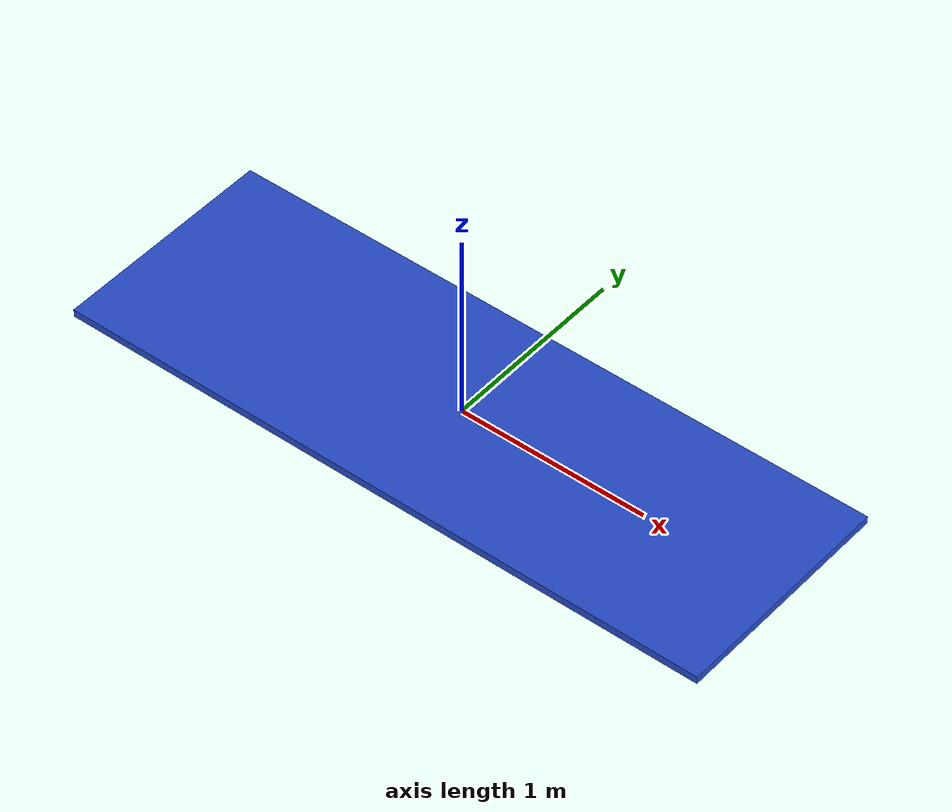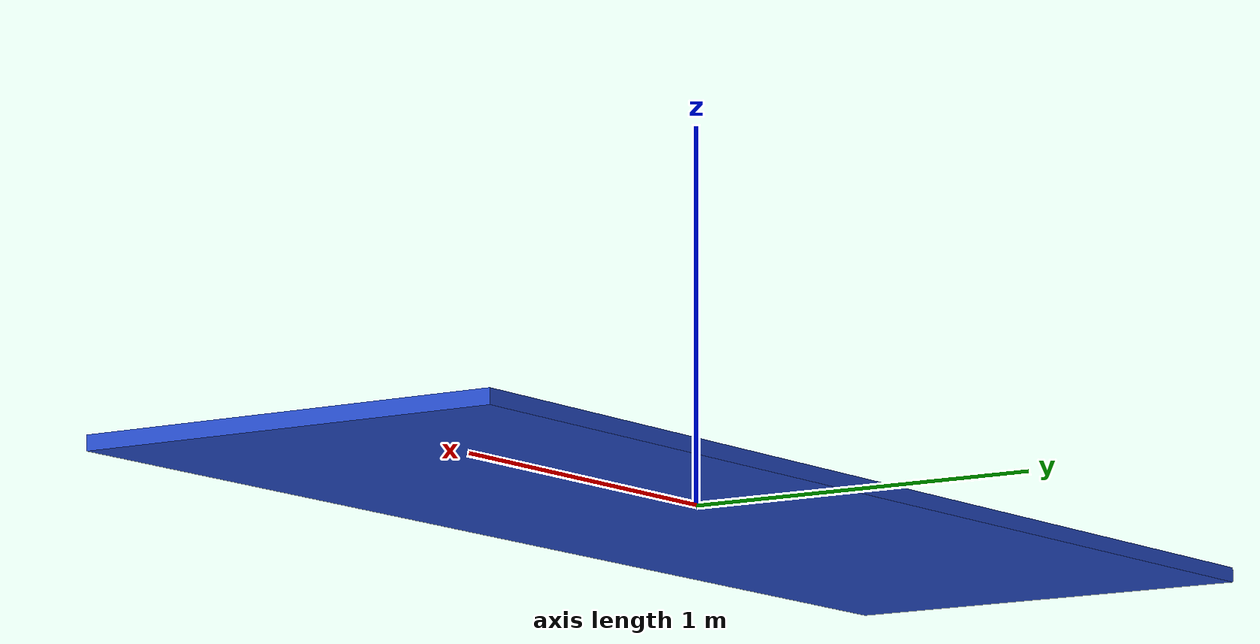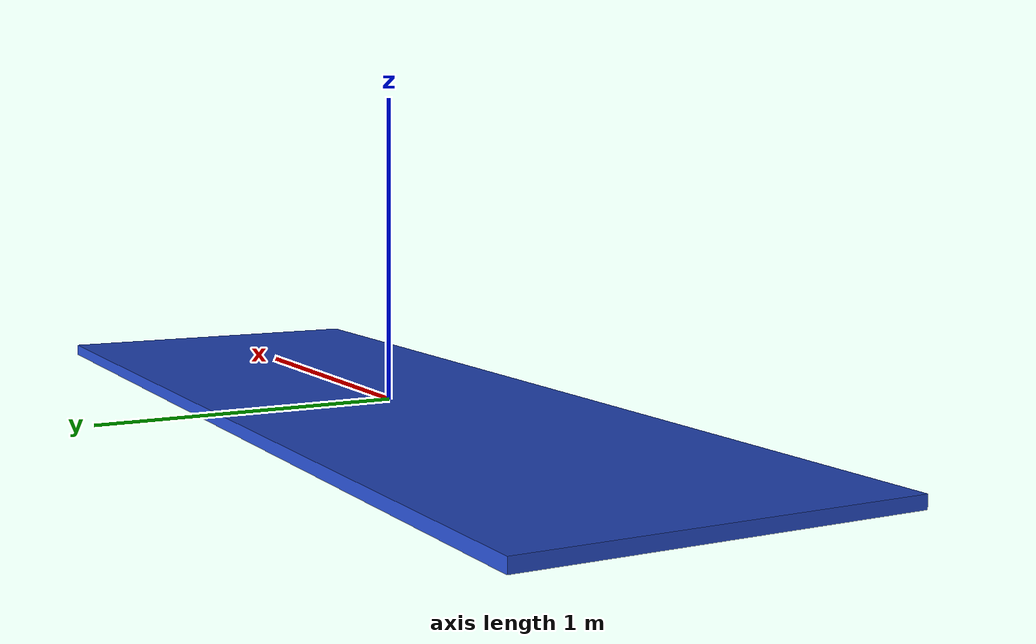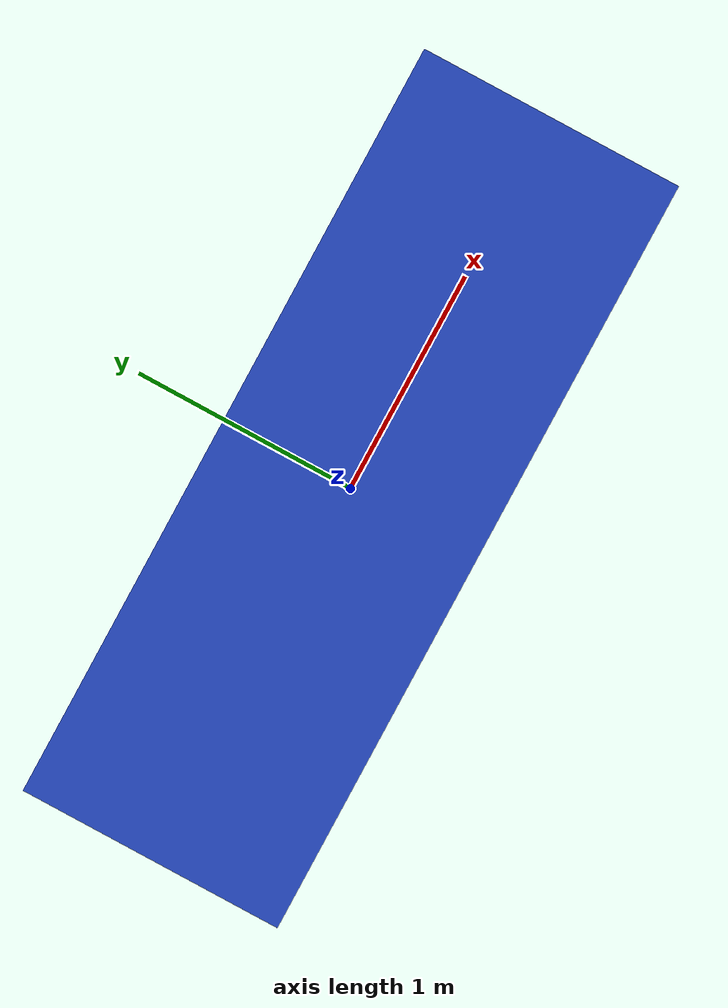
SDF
<?xml version="1.0" ?>
<sdf version="1.5">
  <model name="floor_3.5_blue">
    <static>true</static>
    <link name="link">
      <pose>0 0 -0.02 0 0 0</pose>
      <collision name="collision">
        <geometry>
          <box>
            <size>3.5 1.2 0.04</size>
          </box>
        </geometry>
      </collision>
      <visual name="visual">
        <geometry>
          <box>
            <size>3.5 1.2 0.04</size>
          </box>
        </geometry>
        <material>
          <script>
            <uri>model://floor_3.5_blue/materials/scripts</uri>
            <uri>model://floor_3.5_blue/materials/textures</uri>
            <name>vrc/floor_3.5_blue</name>
          </script>
        </material>
      </visual>
    </link>
  </model>
</sdf>
